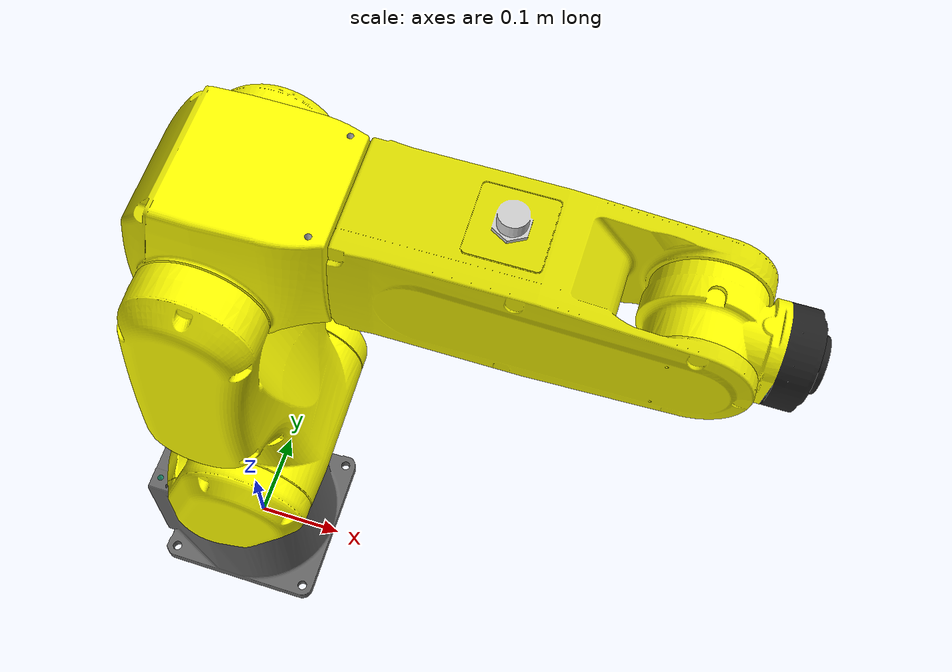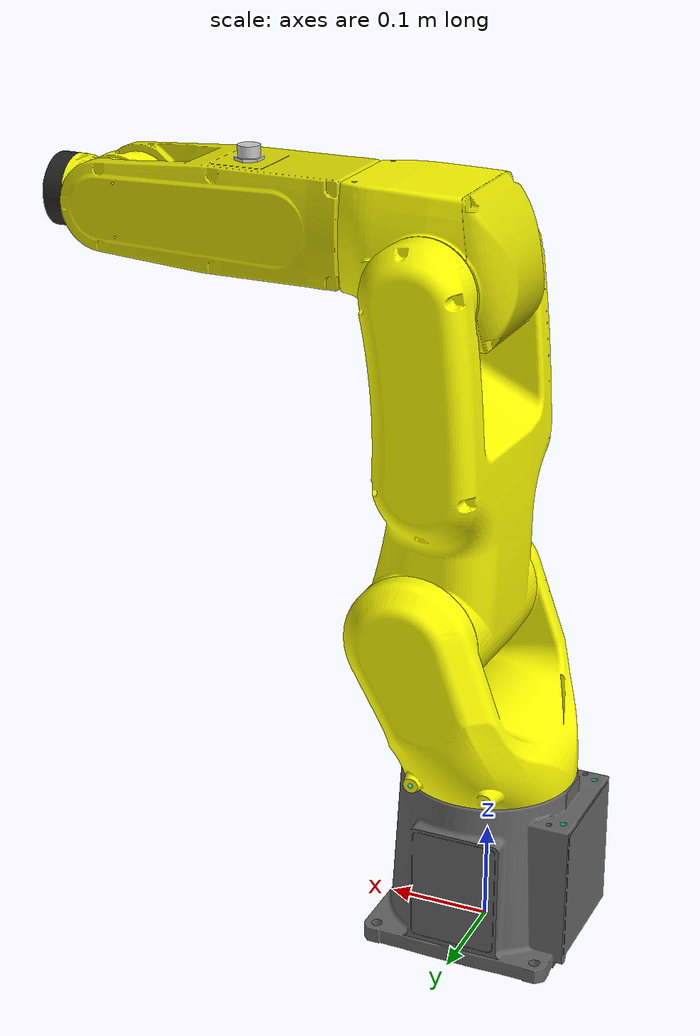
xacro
<?xml version="1.0" ?>
<robot name="lrmate200id" xmlns:xacro="http://wiki.ros.org/xacro">
  <xacro:include
    filename="$(find fanuc_lrmate_description)/urdf/lrmate200id_urdf_macro.xacro"
  />

  <link name="world" />
  <link name="ee_link" />
  <xacro:lrmate200id parent="world" child="ee_link">
    <origin xyz="0 0 0" rpy="0 0 0" />
  </xacro:lrmate200id>
</robot>

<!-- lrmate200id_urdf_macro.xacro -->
<!--
SPDX-FileCopyrightText: 2025, FANUC America Corporation
SPDX-FileCopyrightText: 2025, FANUC CORPORATION
SPDX-License-Identifier: Apache-2.0
-->
<!-- URDF for LR Mate 7/7D (LR Mate 200iD) -->
<robot xmlns:xacro="http://wiki.ros.org/xacro">
  <xacro:macro
    name="lrmate200id"
    params="prefix=''
            parent
            *origin
            child"
  >

    <xacro:property name="j1_lower_limit" value="${radians(-170)}" />
    <xacro:property name="j2_lower_limit" value="${radians(-100)}" />
    <xacro:property name="j3_lower_limit" value="${radians(-70)}" />
    <xacro:property name="j4_lower_limit" value="${radians(-190)}" />
    <xacro:property name="j5_lower_limit" value="${radians(-125)}" />
    <xacro:property name="j6_lower_limit" value="${radians(-360)}" />

    <xacro:property name="j1_upper_limit" value="${radians( 170)}" />
    <xacro:property name="j2_upper_limit" value="${radians( 145)}" />
    <xacro:property name="j3_upper_limit" value="${radians( 205)}" />
    <xacro:property name="j4_upper_limit" value="${radians( 190)}" />
    <xacro:property name="j5_upper_limit" value="${radians( 125)}" />
    <xacro:property name="j6_upper_limit" value="${radians( 360)}" />

    <xacro:property name="j1_effort_limit" value=" 450" />
    <xacro:property name="j2_effort_limit" value=" 500" />
    <xacro:property name="j3_effort_limit" value=" 200" />
    <xacro:property name="j4_effort_limit" value=" 70" />
    <xacro:property name="j5_effort_limit" value=" 40" />
    <xacro:property name="j6_effort_limit" value=" 20" />

    <xacro:property name="j1_velocity_limit" value="${radians( 450)}" />
    <xacro:property name="j2_velocity_limit" value="${radians( 380)}" />
    <xacro:property name="j3_velocity_limit" value="${radians( 520)}" />
    <xacro:property name="j4_velocity_limit" value="${radians( 550)}" />
    <xacro:property name="j5_velocity_limit" value="${radians( 545)}" />
    <xacro:property name="j6_velocity_limit" value="${radians( 1000)}" />

    <!-- links -->
    <link name="${prefix}base_link">
      <visual>
        <origin xyz="0 0 0" rpy="0 0 0" />
        <geometry>
          <mesh
            filename="package://fanuc_lrmate_description/meshes/lrmate200id/visual/base.dae"
          />
        </geometry>
      </visual>
      <collision>
        <origin xyz="0 0 0" rpy="0 0 0" />
        <geometry>
          <mesh
            filename="package://fanuc_lrmate_description/meshes/lrmate200id/collision/base.stl"
            scale="0.001 0.001 0.001"
          />
        </geometry>
      </collision>
      <inertial>
        <mass value=" 8" />
        <origin xyz="-.02 -.01  .1" />
        <inertia
          ixx=" 0"
          ixy=" 0"
          ixz=" 0"
          iyy=" 0"
          iyz=" 0"
          izz=" 0"
        />
      </inertial>
    </link>

    <link name="${prefix}J1_link">
      <visual>
        <origin xyz="0 0 0" rpy="0 0 0" />
        <geometry>
          <mesh
            filename="package://fanuc_lrmate_description/meshes/lrmate200id/visual/j1.dae"
          />
        </geometry>
      </visual>
      <collision>
        <origin xyz="0 0 0" rpy="0 0 0" />
        <geometry>
          <mesh
            filename="package://fanuc_lrmate_description/meshes/lrmate200id/collision/j1.stl"
            scale="0.001 0.001 0.001"
          />
        </geometry>
      </collision>
      <inertial>
        <mass value=" 4" />
        <origin xyz=" .03  .03 -.05" />
        <inertia
          ixx=" 0"
          ixy=" 0"
          ixz=" 0"
          iyy=" 0"
          iyz=" 0"
          izz=" 0"
        />
      </inertial>
    </link>

    <link name="${prefix}J2_link">
      <visual>
        <origin xyz="0 0 0" rpy="0 0 0" />
        <geometry>
          <mesh
            filename="package://fanuc_lrmate_description/meshes/lrmate200id/visual/j2.dae"
          />
        </geometry>
      </visual>
      <collision>
        <origin xyz="0 0 0" rpy="0 0 0" />
        <geometry>
          <mesh
            filename="package://fanuc_lrmate_description/meshes/lrmate200id/collision/j2.stl"
            scale="0.001 0.001 0.001"
          />
        </geometry>
      </collision>
      <inertial>
        <mass value=" 6" />
        <origin xyz="-.01  .01  .1" />
        <inertia
          ixx=" .1"
          ixy=" 0"
          ixz=" 0"
          iyy=" .1"
          iyz=" 0"
          izz=" 0"
        />
      </inertial>
    </link>

    <link name="${prefix}J3_link">
      <visual>
        <origin xyz="0 0 0" rpy="0 0 0" />
        <geometry>
          <mesh
            filename="package://fanuc_lrmate_description/meshes/lrmate200id/visual/j3.dae"
          />
        </geometry>
      </visual>
      <collision>
        <origin xyz="0 0 0" rpy="0 0 0" />
        <geometry>
          <mesh
            filename="package://fanuc_lrmate_description/meshes/lrmate200id/collision/j3.stl"
            scale="0.001 0.001 0.001"
          />
        </geometry>
      </collision>
      <inertial>
        <mass value=" 2" />
        <origin xyz=" .01  .01  .01" />
        <inertia
          ixx=" 0"
          ixy=" 0"
          ixz=" 0"
          iyy=" 0"
          iyz=" 0"
          izz=" 0"
        />
      </inertial>
    </link>

    <link name="${prefix}J4_link">
      <visual>
        <origin xyz="0 0 0" rpy="0 0 0" />
        <geometry>
          <mesh
            filename="package://fanuc_lrmate_description/meshes/lrmate200id/visual/j4.dae"
          />
        </geometry>
      </visual>
      <collision>
        <origin xyz="0 0 0" rpy="0 0 0" />
        <geometry>
          <mesh
            filename="package://fanuc_lrmate_description/meshes/lrmate200id/collision/j4.stl"
            scale="0.001 0.001 0.001"
          />
        </geometry>
      </collision>
      <inertial>
        <mass value=" 3" />
        <origin xyz=" .2  .01  0" />
        <inertia
          ixx=" 0"
          ixy=" 0"
          ixz=" 0"
          iyy=" 0"
          iyz=" 0"
          izz=" 0"
        />
      </inertial>
    </link>

    <link name="${prefix}J5_link">
      <visual>
        <origin xyz="0 0 0" rpy="0 0 0" />
        <geometry>
          <mesh
            filename="package://fanuc_lrmate_description/meshes/lrmate200id/visual/j5.dae"
          />
        </geometry>
      </visual>
      <collision>
        <origin xyz="0 0 0" rpy="0 0 0" />
        <geometry>
          <mesh
            filename="package://fanuc_lrmate_description/meshes/lrmate200id/collision/j5.stl"
            scale="0.001 0.001 0.001"
          />
        </geometry>
      </collision>
      <inertial>
        <mass value=" 2" />
        <origin xyz=" .04  0  0" />
        <inertia
          ixx=" 0"
          ixy=" 0"
          ixz=" 0"
          iyy=" 0"
          iyz=" 0"
          izz=" 0"
        />
      </inertial>
    </link>

    <link name="${prefix}J6_link">
      <visual>
        <origin xyz="0 0 0" rpy="0 0 0" />
        <geometry>
          <mesh
            filename="package://fanuc_lrmate_description/meshes/lrmate200id/visual/j6.dae"
          />
        </geometry>
      </visual>
      <collision>
        <origin xyz="0 0 0" rpy="0 0 0" />
        <geometry>
          <mesh
            filename="package://fanuc_lrmate_description/meshes/lrmate200id/collision/j6.stl"
            scale="0.001 0.001 0.001"
          />
        </geometry>
      </collision>
      <inertial>
        <mass value=" 0" />
        <origin xyz=" 0  0  0" />
        <inertia
          ixx=" 0"
          ixy=" 0"
          ixz=" 0"
          iyy=" 0"
          iyz=" 0"
          izz=" 0"
        />
      </inertial>
    </link>

    <!-- joints -->
    <joint name="${prefix}J1" type="revolute">
      <origin xyz=" 0  0  .33" rpy="0 0 0" />
      <parent link="${prefix}base_link" />
      <child link="${prefix}J1_link" />
      <axis xyz=" 0  0  1" />
      <limit
        lower="${j1_lower_limit}"
        upper="${j1_upper_limit}"
        effort="${j1_effort_limit}"
        velocity="${j1_velocity_limit}"
      />
    </joint>

    <joint name="${prefix}J2" type="revolute">
      <origin xyz=" .05  0  0" rpy="0 0 0" />
      <parent link="${prefix}J1_link" />
      <child link="${prefix}J2_link" />
      <axis xyz=" 0  1  0" />
      <limit
        lower="${j2_lower_limit}"
        upper="${j2_upper_limit}"
        effort="${j2_effort_limit}"
        velocity="${j2_velocity_limit}"
      />
    </joint>

    <joint name="${prefix}J3" type="revolute">
      <origin xyz=" 0  0  .33" rpy="0 0 0" />
      <parent link="${prefix}J2_link" />
      <child link="${prefix}J3_link" />
      <axis xyz=" 0 -1  0" />
      <limit
        lower="${j3_lower_limit}"
        upper="${j3_upper_limit}"
        effort="${j3_effort_limit}"
        velocity="${j3_velocity_limit}"
      />
    </joint>

    <joint name="${prefix}J4" type="revolute">
      <origin xyz=" 0  0  .035" rpy="0 0 0" />
      <parent link="${prefix}J3_link" />
      <child link="${prefix}J4_link" />
      <axis xyz="-1  0  0" />
      <limit
        lower="${j4_lower_limit}"
        upper="${j4_upper_limit}"
        effort="${j4_effort_limit}"
        velocity="${j4_velocity_limit}"
      />
    </joint>

    <joint name="${prefix}J5" type="revolute">
      <origin xyz=" .335  0  0" rpy="0 0 0" />
      <parent link="${prefix}J4_link" />
      <child link="${prefix}J5_link" />
      <axis xyz=" 0 -1  0" />
      <limit
        lower="${j5_lower_limit}"
        upper="${j5_upper_limit}"
        effort="${j5_effort_limit}"
        velocity="${j5_velocity_limit}"
      />
    </joint>

    <joint name="${prefix}J6" type="revolute">
      <origin xyz=" 0  0  0" rpy="0 0 0" />
      <parent link="${prefix}J5_link" />
      <child link="${prefix}J6_link" />
      <axis xyz="-1  0  0" />
      <limit
        lower="${j6_lower_limit}"
        upper="${j6_upper_limit}"
        effort="${j6_effort_limit}"
        velocity="${j6_velocity_limit}"
      />
    </joint>

    <!-- world coords -->
    <link name="${prefix}wbase" />
    <joint name="${prefix}base_link-wbase" type="fixed">
      <origin xyz=" 0  0  .33" rpy="0 0 0" />
      <parent link="${prefix}base_link" />
      <child link="${prefix}wbase" />
    </joint>

    <!-- flange coords -->
    <link name="${prefix}flange" />
    <joint name="${prefix}J6-flange" type="fixed">
      <origin xyz=" .08  0  0" rpy="0 0 0" />
      <parent link="${prefix}J6_link" />
      <child link="${prefix}flange" />
    </joint>

    <!-- Attach to parent -->
    <joint name="${prefix}base_joint" type="fixed">
      <xacro:insert_block name="origin" />
      <parent link="${parent}" />
      <child link="${prefix}base_link" />
    </joint>

    <!-- Attach child -->
    <joint name="${prefix}child_joint" type="fixed">
      <origin xyz="0 0 0" rpy="0 0 0" />
      <parent link="${prefix}flange" />
      <child link="${child}" />
    </joint>
  </xacro:macro>
</robot>
